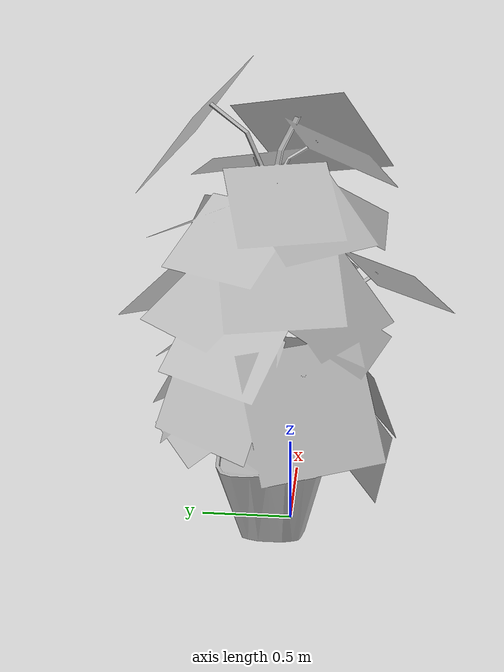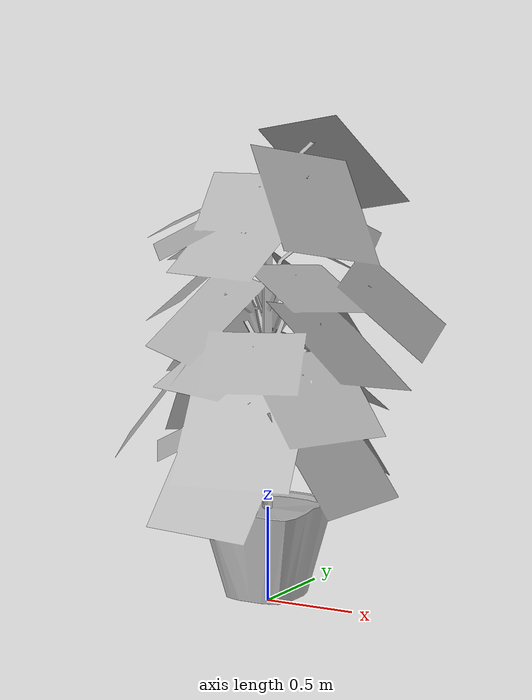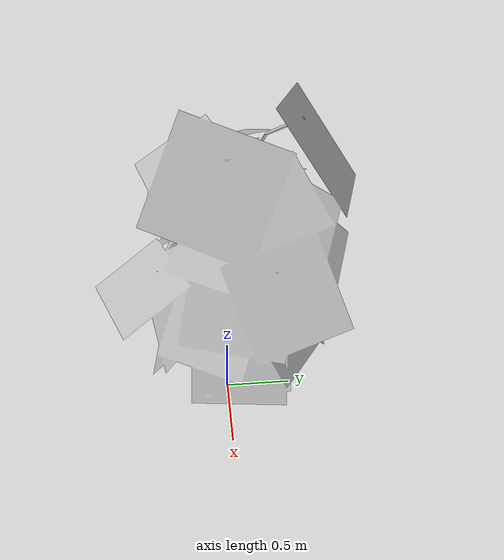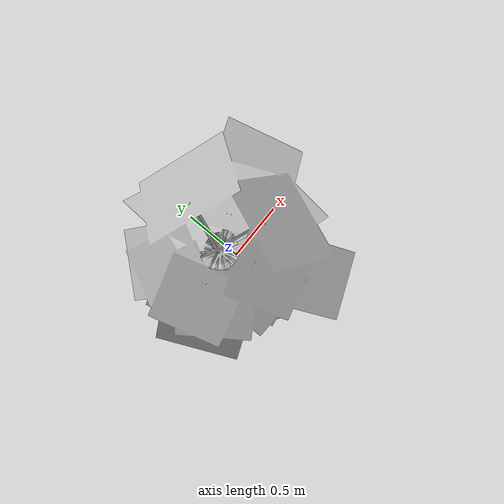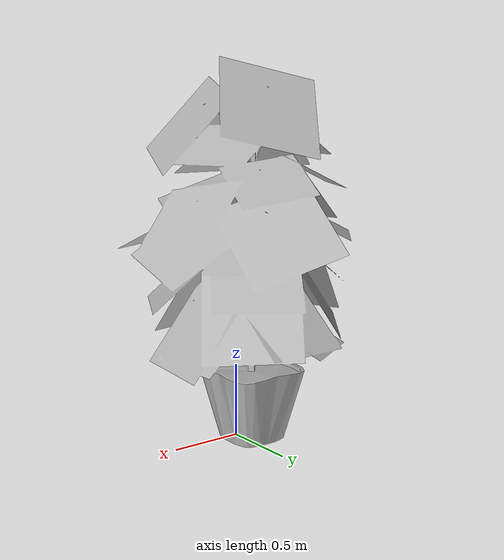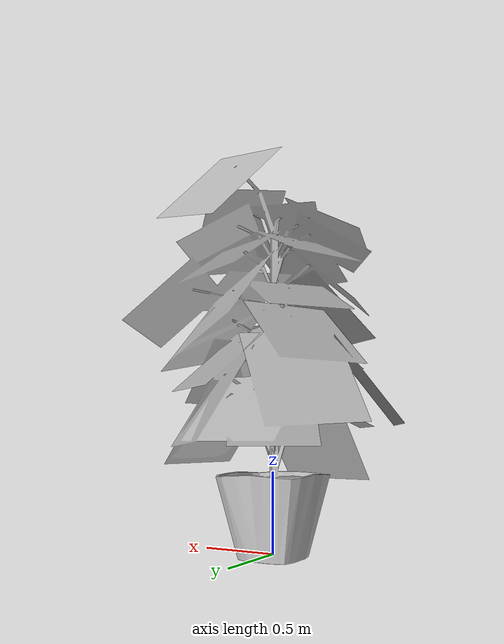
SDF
<?xml version='1.0'?>
<sdf version='1.4'>
  <model name='734'>
    <pose>0 0 0 0 0 0</pose>
    <static>true</static>
    <link name='link'>
      <collision name='collision'>
        <pose>0 0 0 0 0 0</pose>
        <geometry>
          <box>
            <size>1.73262 1.70667 2</size>
          </box>
        </geometry>
      </collision>
      <visual name='visual'>
        <pose>0 0 0 0 0 0</pose>
        <geometry>
          <mesh><uri>model://734/734.dae</uri></mesh>
        </geometry>
      </visual>
    </link>
  </model>
</sdf>
